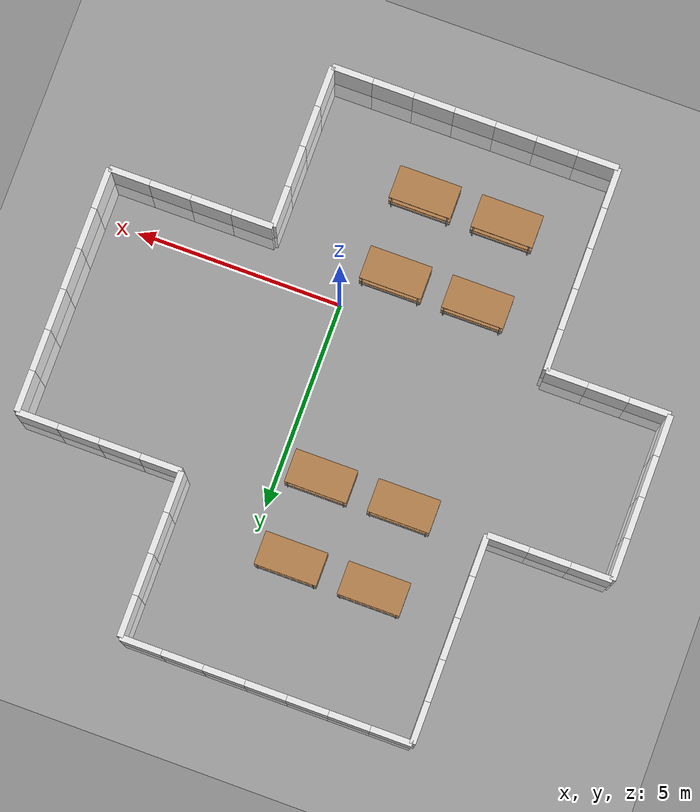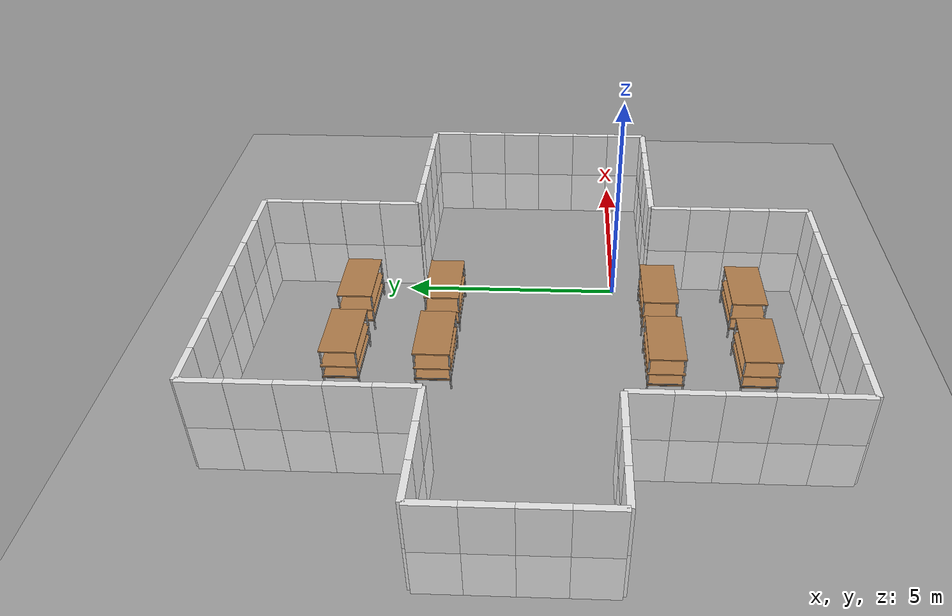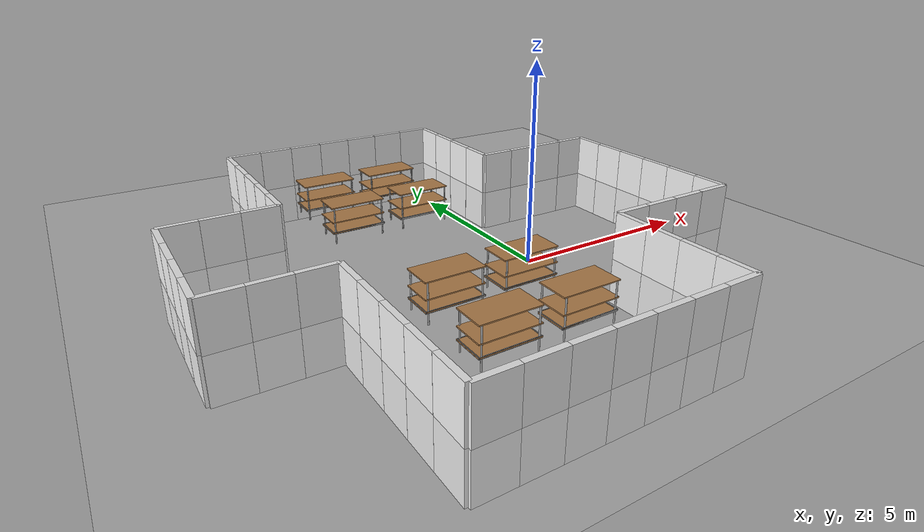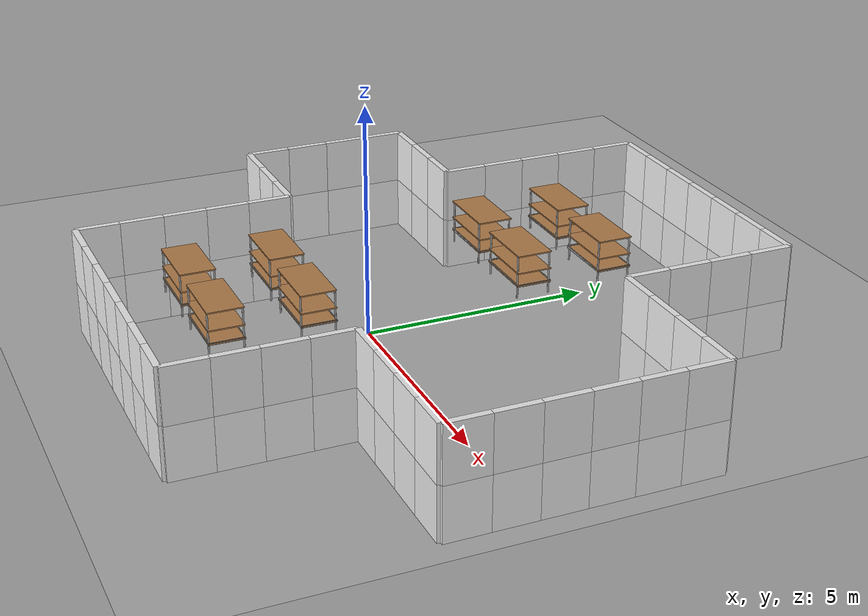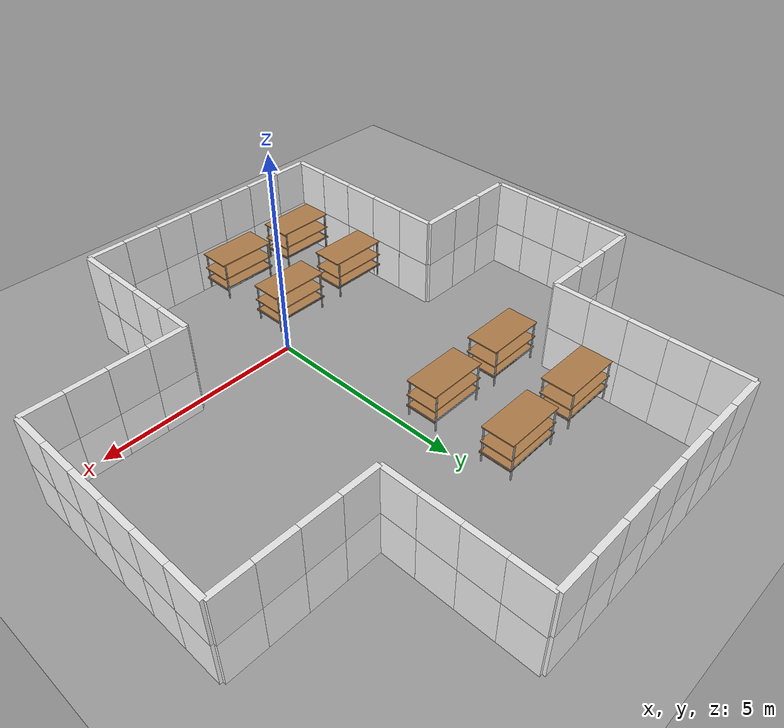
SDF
<sdf version="1.5">
 <world name="default">
  <include><uri>model://sun</uri></include>
  <include><uri>model://ground_plane</uri></include>
  <include>
   <uri>model://amazon_warehouse_pallet</uri>
   <name>warehouse_pallet_0</name>
   <pose>-3 4 0 0 0 0</pose>
  </include>
  <include>
   <uri>model://amazon_warehouse_pallet</uri>
   <name>warehouse_pallet_1</name>
   <pose>-3 6 0 0 0 0</pose>
  </include>
  <include>
   <uri>model://amazon_warehouse_pallet</uri>
   <name>warehouse_pallet_2</name>
   <pose>-1 4 0 0 0 0</pose>
  </include>
  <include>
   <uri>model://amazon_warehouse_pallet</uri>
   <name>warehouse_pallet_3</name>
   <pose>-1 6 0 0 0 0</pose>
  </include>
  <include>
   <uri>model://amazon_warehouse_pallet</uri>
   <name>warehouse_pallet_8</name>
   <pose>-3 -1 0 0 0 0</pose>
  </include>
  <include>
   <uri>model://amazon_warehouse_pallet</uri>
   <name>warehouse_pallet_9</name>
   <pose>-3 -3 0 0 0 0</pose>
  </include>
  <include>
   <uri>model://amazon_warehouse_pallet</uri>
   <name>warehouse_pallet_10</name>
   <pose>-1 -1 0 0 0 0</pose>
  </include>
  <include>
   <uri>model://amazon_warehouse_pallet</uri>
   <name>warehouse_pallet_11</name>
   <pose>-1 -3 0 0 0 0</pose>
  </include>
  <include><uri>model://wall</uri><name>wall_01</name><pose>-8 3.5 0 0 0 1.57</pose></include>
  <include><uri>model://wall</uri><name>wall_02</name><pose>-8 2.5 0 0 0 1.57</pose></include>
  <include><uri>model://wall</uri><name>wall_03</name><pose>-8 1.5 0 0 0 1.57</pose></include>
  <include><uri>model://wall</uri><name>wall_03b</name><pose>-8 0.5 0 0 0 1.57</pose></include>
  <include><uri>model://wall</uri><name>wall_04b</name><pose>-7.5 0 0 0 0 0</pose></include>
  <include><uri>model://wall</uri><name>wall_04</name><pose>-6.5 0 0 0 0 0</pose></include>
  <include><uri>model://wall</uri><name>wall_05b</name><pose>-6.5 4.0 0 0 0 0</pose></include>
  <include><uri>model://wall</uri><name>wall_05</name><pose>-7.5 4.0 0 0 0 0</pose></include>
  <include><uri>model://wall</uri><name>wall_06</name><pose>-5.5 0 0 0 0 0</pose></include>
  <include><uri>model://wall</uri><name>wall_07</name><pose>-5.5 4.0 0 0 0 0</pose></include>
  <include><uri>model://wall</uri><name>wall_08</name><pose>-5 4.5 0 0 0 1.57</pose></include>
  <include><uri>model://wall</uri><name>wall_09</name><pose>-5 5.5 0 0 0 1.57</pose></include>
  <include><uri>model://wall</uri><name>wall_10</name><pose>-5 6.5 0 0 0 1.57</pose></include>
  <include><uri>model://wall</uri><name>wall_11</name><pose>-5 7.5 0 0 0 1.57</pose></include>
  <include><uri>model://wall</uri><name>wall_12</name><pose>-5 8.5 0 0 0 1.57</pose></include>
  <include><uri>model://wall</uri><name>wall_14</name><pose>-5 -0.5 0 0 0 1.57</pose></include>
  <include><uri>model://wall</uri><name>wall_15</name><pose>-5 -1.5 0 0 0 1.57</pose></include>
  <include><uri>model://wall</uri><name>wall_16</name><pose>-5 -2.5 0 0 0 1.57</pose></include>
  <include><uri>model://wall</uri><name>wall_17</name><pose>-5 -3.5 0 0 0 1.57</pose></include>
  <include><uri>model://wall</uri><name>wall_18</name><pose>-5 -4.5 0 0 0 1.57</pose></include>
  <include><uri>model://wall</uri><name>wall_20</name><pose>2 8.5 0 0 0 1.57</pose></include>
  <include><uri>model://wall</uri><name>wall_22</name><pose>2 7.5 0 0 0 1.57</pose></include>
  <include><uri>model://wall</uri><name>wall_23</name><pose>2 6.5 0 0 0 1.57</pose></include>
  <include><uri>model://wall</uri><name>wall_24</name><pose>2 5.5 0 0 0 1.57</pose></include>
  <include><uri>model://wall</uri><name>wall_25</name><pose>2.5 5 0 0 0 0</pose></include>
  <include><uri>model://wall</uri><name>wall_26</name><pose>3.5 5 0 0 0 0</pose></include>
  <include><uri>model://wall</uri><name>wall_27</name><pose>4.5 5 0 0 0 0</pose></include>
  <include><uri>model://wall</uri><name>wall_28</name><pose>5.5 5 0 0 0 0</pose></include>
  <include><uri>model://wall</uri><name>wall_29</name><pose>6 4.5 0 0 0 1.57</pose></include>
  <include><uri>model://wall</uri><name>wall_30</name><pose>6 3.5 0 0 0 1.57</pose></include>
  <include><uri>model://wall</uri><name>wall_31</name><pose>6 2.5 0 0 0 1.57</pose></include>
  <include><uri>model://wall</uri><name>wall_32</name><pose>6 1.5 0 0 0 1.57</pose></include>
  <include><uri>model://wall</uri><name>wall_33</name><pose>6 0.5 0 0 0 1.57</pose></include>
  <include><uri>model://wall</uri><name>wall_34</name><pose>6 -0.5 0 0 0 1.57</pose></include>
  <include><uri>model://wall</uri><name>wall_35</name><pose>5.5 -1.0 0 0 0 0</pose></include>
  <include><uri>model://wall</uri><name>wall_36</name><pose>4.5 -1.0 0 0 0 0</pose></include>
  <include><uri>model://wall</uri><name>wall_37</name><pose>3.5 -1.0 0 0 0 0</pose></include>
  <include><uri>model://wall</uri><name>wall_38</name><pose>2.5 -1.0 0 0 0 0</pose></include>
  <include><uri>model://wall</uri><name>wall_39</name><pose>2.0 -1.5 0 0 0 1.57</pose></include>
  <include><uri>model://wall</uri><name>wall_40</name><pose>2.0 -2.5 0 0 0 1.57</pose></include>
  <include><uri>model://wall</uri><name>wall_41</name><pose>2.0 -3.5 0 0 0 1.57</pose></include>
  <include><uri>model://wall</uri><name>wall_42</name><pose>2.0 -4.5 0 0 0 1.57</pose></include>
  <include><uri>model://wall</uri><name>wall_43</name><pose>1.5 -5 0 0 0 0</pose></include>
  <include><uri>model://wall</uri><name>wall_44</name><pose>0.5 -5 0 0 0 0</pose></include>
  <include><uri>model://wall</uri><name>wall_45</name><pose>-0.5 -5 0 0 0 0</pose></include>
  <include><uri>model://wall</uri><name>wall_46</name><pose>-1.5 -5 0 0 0 0</pose></include>
  <include><uri>model://wall</uri><name>wall_47</name><pose>-2.5 -5 0 0 0 0</pose></include>
  <include><uri>model://wall</uri><name>wall_48</name><pose>-3.5 -5 0 0 0 0</pose></include>
  <include><uri>model://wall</uri><name>wall_49</name><pose>-4.5 -5 0 0 0 0</pose></include>
  <include><uri>model://wall</uri><name>wall_50</name><pose>1.5 9 0 0 0 0</pose></include>
  <include><uri>model://wall</uri><name>wall_51</name><pose>0.5 9 0 0 0 0</pose></include>
  <include><uri>model://wall</uri><name>wall_52</name><pose>-0.5 9 0 0 0 0</pose></include>
  <include><uri>model://wall</uri><name>wall_53</name><pose>-1.5 9 0 0 0 0</pose></include>
  <include><uri>model://wall</uri><name>wall_54</name><pose>-2.5 9 0 0 0 0</pose></include>
  <include><uri>model://wall</uri><name>wall_55</name><pose>-3.5 9 0 0 0 0</pose></include>
  <include><uri>model://wall</uri><name>wall_56</name><pose>-4.5 9 0 0 0 0</pose></include>
 </world>
</sdf>

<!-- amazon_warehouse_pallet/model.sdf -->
<sdf version="1.5">
    <model name="amazon_warehouse_pallet">
        <static>false</static>
        <link name="link">

            <collision name="surface1">
                <pose>0 0 0.3 0 0 0</pose>
                <geometry>
                    <box>
                        <size>1.5 0.8 0.03</size>
                    </box>
                </geometry>
                <surface>
                    <friction>
                        <ode>
                            <mu>Inf</mu>
                            <mu2>Inf</mu2>
                            <slip1>0.0</slip1>
                            <slip2>0.0</slip2>
                        </ode>
                    </friction>
                </surface>
            </collision>
            <visual name="visual1">
                <pose>0 0 0.3 0 0 0</pose>
                <geometry>
                    <box>
                        <size>1.5 0.8 0.03</size>
                    </box>
                </geometry>
                <material>
                    <script>
                        <uri>file://media/materials/scripts/gazebo.material</uri>
                        <name>Gazebo/Wood</name>
                    </script>
                </material>
            </visual>

            <!-- Lets create a Holding angle bracket kind of structure under surface1, so that it could hold the lift plate of the robot.-->

            <collision name="holding1_collision">
                <pose>0 0.39 0.30 0 0 0</pose>
                <geometry>
                    <box>
                        <size>1.5 0.02 0.05</size>
                    </box>
                </geometry>
                <surface>
                    <friction>
                        <ode>
                            <mu>999999999</mu>
                            <mu2>999999999</mu2>
                            <slip1>0.0</slip1>
                            <slip2>0.0</slip2>
                        </ode>
                    </friction>
                </surface>
            </collision>
            <visual name="holding1_visual">
                <pose>0 0.39 0.30 0 0 0</pose>
                <geometry>
                    <box>
                        <size>1.5 0.02 0.05</size>
                    </box>
                </geometry>
                <material>
                    <script>
                        <uri>file://media/materials/scripts/gazebo.material</uri>
                        <name>Gazebo/Grey</name>
                    </script>
                </material>
            </visual>

            <collision name="holding2_collision">
                <pose>0 -0.39 0.30 0 0 0</pose>
                <geometry>
                    <box>
                        <size>1.5 0.02 0.05</size>
                    </box>
                </geometry>
                <surface>
                    <friction>
                        <ode>
                            <mu>999999999</mu>
                            <mu2>999999999</mu2>
                            <slip1>0.0</slip1>
                            <slip2>0.0</slip2>
                        </ode>
                    </friction>
                </surface>
            </collision>
            <visual name="holding2_visual">
                <pose>0 -0.39 0.30 0 0 0</pose>
                <geometry>
                    <box>
                        <size>1.5 0.02 0.05</size>
                    </box>
                </geometry>
                <material>
                    <script>
                        <uri>file://media/materials/scripts/gazebo.material</uri>
                        <name>Gazebo/Grey</name>
                    </script>
                </material>
            </visual>

            <collision name="holding3_collision">
                <pose>0.735 0 0.30 0 0 1.57</pose>
                <geometry>
                    <box>
                        <size>0.8 0.02 0.05</size>
                    </box>
                </geometry>
                <surface>
                    <friction>
                        <ode>
                            <mu>999999999</mu>
                            <mu2>999999999</mu2>
                            <slip1>0.0</slip1>
                            <slip2>0.0</slip2>
                        </ode>
                    </friction>
                </surface>
            </collision>
            <visual name="holding3_visual">
                <pose>0.735 0 0.30 0 0 1.57</pose>
                <geometry>
                    <box>
                        <size>0.8 0.02 0.05</size>
                    </box>
                </geometry>
                <material>
                    <script>
                        <uri>file://media/materials/scripts/gazebo.material</uri>
                        <name>Gazebo/Grey</name>
                    </script>
                </material>
            </visual>

            <collision name="holding4_collision">
                <pose>-0.735 0 0.30 0 0 1.57</pose>
                <geometry>
                    <box>
                        <size>0.8 0.02 0.05</size>
                    </box>
                </geometry>
                <surface>
                    <friction>
                        <ode>
                            <mu>999999999</mu>
                            <mu2>999999999</mu2>
                            <slip1>0.0</slip1>
                            <slip2>0.0</slip2>
                        </ode>
                    </friction>
                </surface>
            </collision>
            <visual name="holding4_visual">
                <pose>-0.735 0 0.30 0 0 1.57</pose>
                <geometry>
                    <box>
                        <size>0.8 0.02 0.05</size>
                    </box>
                </geometry>
                <material>
                    <script>
                        <uri>file://media/materials/scripts/gazebo.material</uri>
                        <name>Gazebo/Grey</name>
                    </script>
                </material>
            </visual>

            <collision name="surface2">
                <pose>0 0 0.6 0 0 0</pose>
                <geometry>
                    <box>
                        <size>1.5 0.8 0.03</size>
                    </box>
                </geometry>
                <surface>
                    <friction>
                        <ode>
                            <mu>2.5</mu>
                            <mu2>2.5</mu2>
                        </ode>
                    </friction>
                </surface>
            </collision>
            <visual name="visual2">
                <pose>0 0 0.6 0 0 0</pose>
                <geometry>
                    <box>
                        <size>1.5 0.8 0.03</size>
                    </box>
                </geometry>
                <material>
                    <script>
                        <uri>file://media/materials/scripts/gazebo.material</uri>
                        <name>Gazebo/Wood</name>
                    </script>
                </material>
            </visual>

            <collision name="surface3">
                <pose>0 0 1.0 0 0 0</pose>
                <geometry>
                    <box>
                        <size>1.5 0.8 0.03</size>
                    </box>
                </geometry>
                <surface>
                    <friction>
                        <ode>
                            <mu>2.5</mu>
                            <mu2>2.5</mu2>
                        </ode>
                    </friction>
                </surface>
            </collision>
            <visual name="visual3">
                <pose>0 0 1.0 0 0 0</pose>
                <geometry>
                    <box>
                        <size>1.5 0.8 0.03</size>
                    </box>
                </geometry>
                <material>
                    <script>
                        <uri>file://media/materials/scripts/gazebo.material</uri>
                        <name>Gazebo/Wood</name>
                    </script>
                </material>
            </visual>

            <collision name="front_left_leg">
                <pose>0.68 0.38 0.5 0 0 0</pose>
                <geometry>
                    <cylinder>
                        <radius>0.02</radius>
                        <length>1.0</length>
                    </cylinder>
                </geometry>
            </collision>
            <visual name="front_left_leg">
                <pose>0.68 0.38 0.5 0 0 0</pose>
                <geometry>
                    <cylinder>
                        <radius>0.02</radius>
                        <length>1.0</length>
                    </cylinder>
                </geometry>
                <material>
                    <script>
                        <uri>file://media/materials/scripts/gazebo.material</uri>
                        <name>Gazebo/Grey</name>
                    </script>
                </material>
            </visual>
            <collision name="front_right_leg">
                <pose>0.68 -0.38 0.5 0 0 0</pose>
                <geometry>
                    <cylinder>
                        <radius>0.02</radius>
                        <length>1.0</length>
                    </cylinder>
                </geometry>
            </collision>
            <visual name="front_right_leg">
                <pose>0.68 -0.38 0.5 0 0 0</pose>
                <geometry>
                    <cylinder>
                        <radius>0.02</radius>
                        <length>1.0</length>
                    </cylinder>
                </geometry>
                <material>
                    <script>
                        <uri>file://media/materials/scripts/gazebo.material</uri>
                        <name>Gazebo/Grey</name>
                    </script>
                </material>
            </visual>
            <collision name="back_right_leg">
                <pose>-0.68 -0.38 0.5 0 0 0</pose>
                <geometry>
                    <cylinder>
                        <radius>0.02</radius>
                        <length>1.0</length>
                    </cylinder>
                </geometry>
            </collision>
            <visual name="back_right_leg">
                <pose>-0.68 -0.38 0.5 0 0 0</pose>
                <geometry>
                    <cylinder>
                        <radius>0.02</radius>
                        <length>1.0</length>
                    </cylinder>
                </geometry>
                <material>
                    <script>
                        <uri>file://media/materials/scripts/gazebo.material</uri>
                        <name>Gazebo/Grey</name>
                    </script>
                </material>
            </visual>
            <collision name="back_left_leg">
                <pose>-0.68 0.38 0.5 0 0 0</pose>
                <geometry>
                    <cylinder>
                        <radius>0.02</radius>
                        <length>1.0</length>
                    </cylinder>
                </geometry>
            </collision>
            <visual name="back_left_leg">
                <pose>-0.68 0.38 0.5 0 0 0</pose>
                <geometry>
                    <cylinder>
                        <radius>0.02</radius>
                        <length>1.0</length>
                    </cylinder>
                </geometry>
                <material>
                    <script>
                        <uri>file://media/materials/scripts/gazebo.material</uri>
                        <name>Gazebo/Grey</name>
                    </script>
                </material>
            </visual>
        </link>
    </model>
</sdf>

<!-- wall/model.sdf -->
<sdf version='1.6'>
  <model name='wall'>
    <link name='Wall_10'>
      <pose frame=''>0 0 0 0 -0 0</pose>
      <self_collide>0</self_collide>
      <enable_wind>0</enable_wind>
      <kinematic>0</kinematic>
      <gravity>1</gravity>
      <inertial>
        <mass>1</mass>
        <pose frame=''>0 0 0 0 -0 0</pose>
        <inertia>
          <ixx>1</ixx>
          <ixy>0</ixy>
          <ixz>0</ixz>
          <iyy>1</iyy>
          <iyz>0</iyz>
          <izz>1</izz>
        </inertia>
      </inertial>
      <visual name='Wall_10_Visual_0'>
        <pose frame=''>0 0 0 0 -0 0</pose>
        <geometry>
          <box>
            <size>1 0.15 2.5</size>
          </box>
        </geometry>
        <material>
          <script>
            <uri>model://wall/materials/scripts</uri>
            <uri>model://wall/materials/textures</uri>
            <name>wall_white</name>
          </script>
          <shader type='pixel'>
            <normal_map>__default__</normal_map>
          </shader>
          <ambient>1 1 1 1</ambient>
          <diffuse>1 1 1 1</diffuse>
          <specular>0 0 0 1</specular>
          <emissive>0 0 0 1</emissive>
        </material>
        <meta>
          <layer>0</layer>
        </meta>
        <transparency>0</transparency>
        <cast_shadows>1</cast_shadows>
      </visual>
      <collision name='Wall_10_Collision_0'>
        <laser_retro>0</laser_retro>
        <max_contacts>10</max_contacts>
        <pose frame=''>0 0 0 0 -0 0</pose>
        <geometry>
          <box>
            <size>1 0.15 2.5</size>
          </box>
        </geometry>
        <surface>
          <friction>
            <ode>
              <mu>1</mu>
              <mu2>1</mu2>
              <fdir1>0 0 0</fdir1>
              <slip1>0</slip1>
              <slip2>0</slip2>
            </ode>
            <torsional>
              <coefficient>1</coefficient>
              <patch_radius>0</patch_radius>
              <surface_radius>0</surface_radius>
              <use_patch_radius>1</use_patch_radius>
              <ode>
                <slip>0</slip>
              </ode>
            </torsional>
          </friction>
          <bounce>
            <restitution_coefficient>0</restitution_coefficient>
            <threshold>1e+06</threshold>
          </bounce>
          <contact>
            <collide_without_contact>0</collide_without_contact>
            <collide_without_contact_bitmask>1</collide_without_contact_bitmask>
            <collide_bitmask>1</collide_bitmask>
            <ode>
              <soft_cfm>0</soft_cfm>
              <soft_erp>0.2</soft_erp>
              <kp>1e+13</kp>
              <kd>1</kd>
              <max_vel>0.01</max_vel>
              <min_depth>0</min_depth>
            </ode>
            <bullet>
              <split_impulse>1</split_impulse>
              <split_impulse_penetration_threshold>-0.01</split_impulse_penetration_threshold>
              <soft_cfm>0</soft_cfm>
              <soft_erp>0.2</soft_erp>
              <kp>1e+13</kp>
              <kd>1</kd>
            </bullet>
          </contact>
        </surface>
      </collision>
    </link>
    <static>1</static>
    <allow_auto_disable>1</allow_auto_disable>
  </model>
</sdf>
